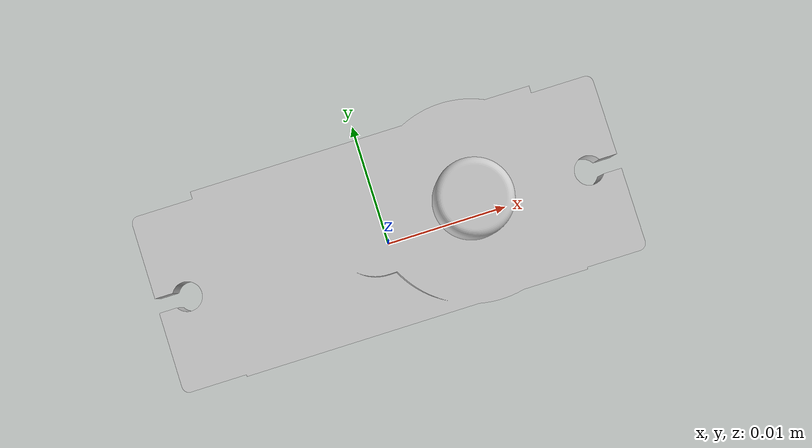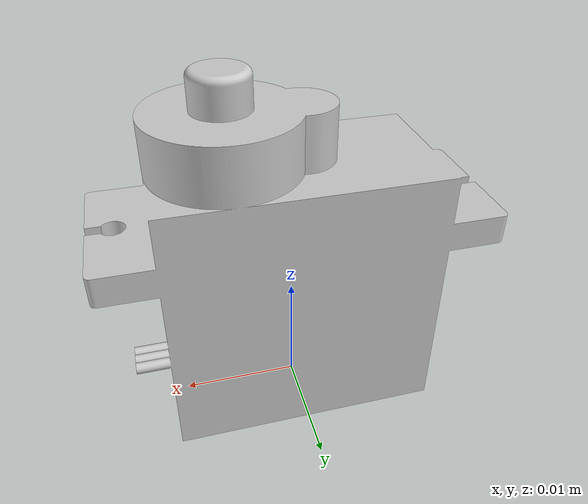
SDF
<?xml version="1.0" ?>
<sdf version="1.6">
  <model name="miuzei9g">
    <static>false</static>
    <link name="miuzei9g_link">
      <inertial>
        <mass>0.009</mass>
        <!-- The servos have already  set at the senter of X and Y, only need to adjust Z-->
        <pose> 0 0 0.0145 0 0 0 </pose>
        <inertia>
          <ixx>7.4238e-07</ixx>
          <ixy>0</ixy>
          <ixz>0</ixz>
          <iyy>1.0275e-06</iyy>
          <iyz>0</iyz>
          <izz>5.0838e-07</izz>
        </inertia>
      </inertial>
      <visual name="miuzei9g_visual">
        <geometry>
          <mesh>
            <uri>model://meshes/miuzei9g.dae</uri>
          </mesh>
        </geometry>
      </visual>
      <collision name="miuzei9g_collision">
        <geometry>
          <mesh>
            <uri>model://meshes/miuzei9g.dae</uri>
          </mesh>
        </geometry>
      </collision>
    </link>
  </model>
</sdf>
